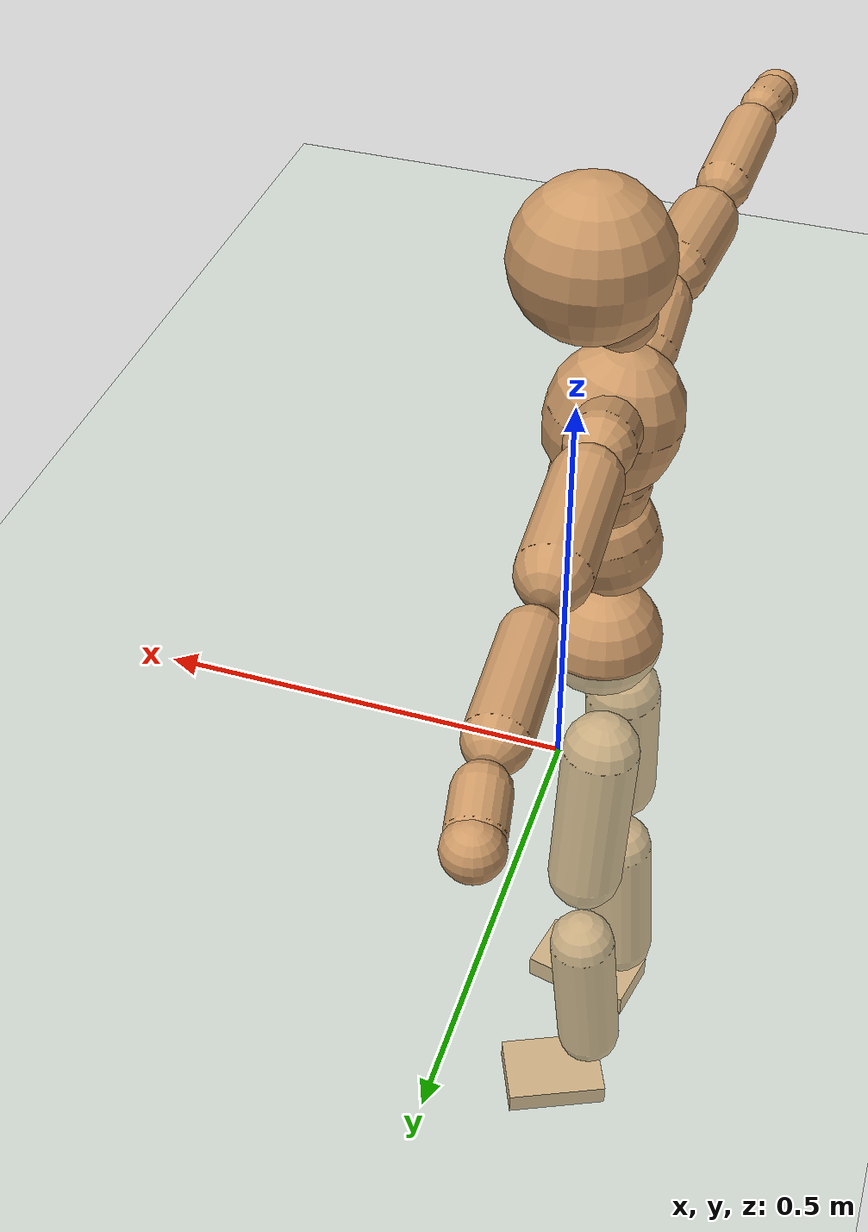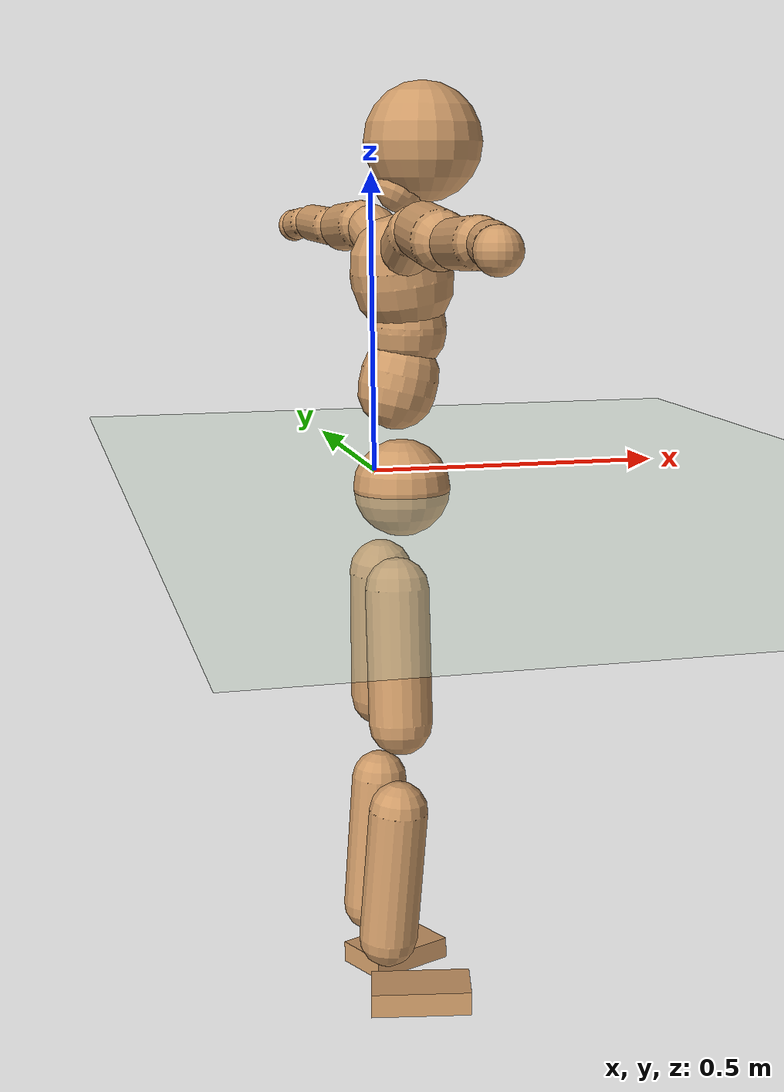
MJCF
<mujoco model="humanoid">
  <compiler coordinate="local" angle="radian"/>
  <default>
    <joint damping="0.0" armature="0.01" stiffness="0.0" limited="true"/>
    <geom conaffinity="1" condim="3" contype="7" margin="0.001" rgba="0.8 0.6 .4 1"/>
  </default>
  <asset>
    <texture type="skybox" builtin="gradient" rgb1=".4 .5 .6" rgb2="0 0 0" width="100" height="100"/>
    <texture builtin="flat" height="1278" mark="cross" markrgb="1 1 1" name="texgeom" random="0.01" rgb1="0.8 0.6 0.4" rgb2="0.8 0.6 0.4" type="cube" width="127"/>
    <texture builtin="checker" height="100" name="texplane" rgb1="0 0 0" rgb2="0.8 0.8 0.8" type="2d" width="100"/>
    <material name="MatPlane" reflectance="0.5" shininess="1" specular="1" texrepeat="60 60" texture="texplane"/>
    <material name="geom" texture="texgeom" texuniform="true"/>
  </asset>
  <worldbody>
    <light cutoff="100" diffuse="1 1 1" dir="-0 0 -1.3" directional="true" exponent="1" pos="0 0 1.3" specular=".1 .1 .1"/>
    <geom conaffinity="1" condim="3" name="floor" pos="0 0 0" rgba="0.8 0.9 0.8 1" size="100 100 .2" type="plane" material="MatPlane"/>
    <body name="Pelvis" pos="0.0016 -0.2038 0.0042">
      <freejoint name="Pelvis"/>
      <geom type="sphere" contype="1" conaffinity="1" density="500" size="0.0780" pos="0.0000 0.0000 0.0000" name="Pelvis"/>
      <body name="L_Hip" pos="-0.0246 0.0494 -0.0736">
        <joint name="L_Hip_x" type="hinge" pos="0 0 0" axis="1 0 0" stiffness="800" damping="80" armature="0.02" range="-180.0000 180.0000"/>
        <joint name="L_Hip_y" type="hinge" pos="0 0 0" axis="0 1 0" stiffness="800" damping="80" armature="0.02" range="-180.0000 180.0000"/>
        <joint name="L_Hip_z" type="hinge" pos="0 0 0" axis="0 0 1" stiffness="800" damping="80" armature="0.02" range="-180.0000 180.0000"/>
        <geom type="capsule" contype="1" conaffinity="1" density="500" fromto="0.0015 0.0089 -0.0736 0.0058 0.0357 -0.2944" size="0.0512" name="L_Hip"/>
        <body name="L_Knee" pos="0.0073 0.0446 -0.3681">
          <joint name="L_Knee_x" type="hinge" pos="0 0 0" axis="1 0 0" stiffness="800" damping="80" armature="0.02" range="-180.0000 180.0000"/>
          <joint name="L_Knee_y" type="hinge" pos="0 0 0" axis="0 1 0" stiffness="800" damping="80" armature="0.02" range="-180.0000 180.0000"/>
          <joint name="L_Knee_z" type="hinge" pos="0 0 0" axis="0 0 1" stiffness="800" damping="80" armature="0.02" range="-180.0000 180.0000"/>
          <geom type="capsule" contype="1" conaffinity="1" density="500" fromto="-0.0061 -0.0020 -0.0746 -0.0244 -0.0081 -0.2984" size="0.0461" name="L_Knee"/>
          <body name="L_Ankle" pos="-0.0305 -0.0101 -0.373">
            <joint name="L_Ankle_x" type="hinge" pos="0 0 0" axis="1 0 0" stiffness="800" damping="80" armature="0.02" range="-180.0000 180.0000"/>
            <joint name="L_Ankle_y" type="hinge" pos="0 0 0" axis="0 1 0" stiffness="800" damping="80" armature="0.02" range="-180.0000 180.0000"/>
            <joint name="L_Ankle_z" type="hinge" pos="0 0 0" axis="0 0 1" stiffness="800" damping="80" armature="0.02" range="-180.0000 180.0000"/>
            <geom type="box" contype="1" conaffinity="1" density="500" pos="0.0530 0.0236 -0.0269" size="0.0734 0.0499 0.0178" quat="0.9782 0.0000 0.0000 0.2078" name="L_Ankle"/>
            <body name="L_Toe" pos="0.106 0.0472 -0.0539">
              <joint name="L_Toe_x" type="hinge" pos="0 0 0" axis="1 0 0" stiffness="500" damping="50" armature="0.02" range="-180.0000 180.0000"/>
              <joint name="L_Toe_y" type="hinge" pos="0 0 0" axis="0 1 0" stiffness="500" damping="50" armature="0.02" range="-180.0000 180.0000"/>
              <joint name="L_Toe_z" type="hinge" pos="0 0 0" axis="0 0 1" stiffness="500" damping="50" armature="0.02" range="-180.0000 180.0000"/>
              <geom type="box" contype="1" conaffinity="1" density="500" pos="0.0000 0.0000 0.0290" size="0.001 0.0023 0.001" quat="0.9773 0.0000 0.0000 0.2120" name="L_Toe"/>
            </body>
          </body>
        </body>
      </body>
      <body name="R_Hip" pos="-0.0219 -0.0517 -0.0813">
        <joint name="R_Hip_x" type="hinge" pos="0 0 0" axis="1 0 0" stiffness="800" damping="80" armature="0.02" range="-180.0000 180.0000"/>
        <joint name="R_Hip_y" type="hinge" pos="0 0 0" axis="0 1 0" stiffness="800" damping="80" armature="0.02" range="-180.0000 180.0000"/>
        <joint name="R_Hip_z" type="hinge" pos="0 0 0" axis="0 0 1" stiffness="800" damping="80" armature="0.02" range="-180.0000 180.0000"/>
        <geom type="capsule" contype="1" conaffinity="1" density="500" fromto="-0.0007 -0.0089 -0.0714 -0.0027 -0.0357 -0.2855" size="0.0508" name="R_Hip"/>
        <body name="R_Knee" pos="-0.0034 -0.0446 -0.3569">
          <joint name="R_Knee_x" type="hinge" pos="0 0 0" axis="1 0 0" stiffness="800" damping="80" armature="0.02" range="-180.0000 180.0000"/>
          <joint name="R_Knee_y" type="hinge" pos="0 0 0" axis="0 1 0" stiffness="800" damping="80" armature="0.02" range="-180.0000 180.0000"/>
          <joint name="R_Knee_z" type="hinge" pos="0 0 0" axis="0 0 1" stiffness="800" damping="80" armature="0.02" range="-180.0000 180.0000"/>
          <geom type="capsule" contype="1" conaffinity="1" density="500" fromto="-0.0057 0.0030 -0.0730 -0.0228 0.0119 -0.2921" size="0.0475" name="R_Knee"/>
          <body name="R_Ankle" pos="-0.0285 0.0149 -0.3651">
            <joint name="R_Ankle_x" type="hinge" pos="0 0 0" axis="1 0 0" stiffness="800" damping="80" armature="0.02" range="-180.0000 180.0000"/>
            <joint name="R_Ankle_y" type="hinge" pos="0 0 0" axis="0 1 0" stiffness="800" damping="80" armature="0.02" range="-180.0000 180.0000"/>
            <joint name="R_Ankle_z" type="hinge" pos="0 0 0" axis="0 0 1" stiffness="800" damping="80" armature="0.02" range="-180.0000 180.0000"/>
            <geom type="box" contype="1" conaffinity="1" density="500" pos="0.0576 -0.0119 -0.0285" size="0.0816 0.0458 0.0194" quat="0.9948 0.0000 0.0000 -0.1014" name="R_Ankle"/>
            <body name="R_Toe" pos="0.1151 -0.0237 -0.057">
              <joint name="R_Toe_x" type="hinge" pos="0 0 0" axis="1 0 0" stiffness="500" damping="50" armature="0.02" range="-180.0000 180.0000"/>
              <joint name="R_Toe_y" type="hinge" pos="0 0 0" axis="0 1 0" stiffness="500" damping="50" armature="0.02" range="-180.0000 180.0000"/>
              <joint name="R_Toe_z" type="hinge" pos="0 0 0" axis="0 0 1" stiffness="500" damping="50" armature="0.02" range="-180.0000 180.0000"/>
              <geom type="box" contype="1" conaffinity="1" density="500" pos="0.0000 0.0000 0.0311" size="0.0009 0.0022 0.0011" quat="0.9958 0.0000 0.0000 -0.0915" name="R_Toe"/>
            </body>
          </body>
        </body>
      </body>
      <body name="Torso" pos="-0.0177 0.0037 0.107">
        <joint name="Torso_x" type="hinge" pos="0 0 0" axis="1 0 0" stiffness="1000" damping="100" armature="0.02" range="-180.0000 180.0000"/>
        <joint name="Torso_y" type="hinge" pos="0 0 0" axis="0 1 0" stiffness="1000" damping="100" armature="0.02" range="-180.0000 180.0000"/>
        <joint name="Torso_z" type="hinge" pos="0 0 0" axis="0 0 1" stiffness="1000" damping="100" armature="0.02" range="-180.0000 180.0000"/>
        <geom type="capsule" contype="1" conaffinity="1" density="500" fromto="0.0184 0.0020 0.0732 0.0122 0.0013 0.0488" size="0.0626" name="Torso"/>
        <body name="Spine" pos="0.0306 0.0033 0.122">
          <joint name="Spine_x" type="hinge" pos="0 0 0" axis="1 0 0" stiffness="1000" damping="100" armature="0.02" range="-180.0000 180.0000"/>
          <joint name="Spine_y" type="hinge" pos="0 0 0" axis="0 1 0" stiffness="1000" damping="100" armature="0.02" range="-180.0000 180.0000"/>
          <joint name="Spine_z" type="hinge" pos="0 0 0" axis="0 0 1" stiffness="1000" damping="100" armature="0.02" range="-180.0000 180.0000"/>
          <geom type="capsule" contype="1" conaffinity="1" density="500" fromto="0.0003 -0.0014 0.0290 0.0002 -0.0010 0.0193" size="0.0619" name="Spine"/>
          <body name="Chest" pos="0.0006 -0.0024 0.0483">
            <joint name="Chest_x" type="hinge" pos="0 0 0" axis="1 0 0" stiffness="1000" damping="100" armature="0.02" range="-180.0000 180.0000"/>
            <joint name="Chest_y" type="hinge" pos="0 0 0" axis="0 1 0" stiffness="1000" damping="100" armature="0.02" range="-180.0000 180.0000"/>
            <joint name="Chest_z" type="hinge" pos="0 0 0" axis="0 0 1" stiffness="1000" damping="100" armature="0.02" range="-180.0000 180.0000"/>
            <geom type="capsule" contype="1" conaffinity="1" density="500" fromto="-0.0120 -0.0051 0.0734 -0.0080 -0.0034 0.0489" size="0.0811" name="Chest"/>
            <body name="Neck" pos="-0.0214 -0.0121 0.1761">
              <joint name="Neck_x" type="hinge" pos="0 0 0" axis="1 0 0" stiffness="500" damping="50" armature="0.02" range="-180.0000 180.0000"/>
              <joint name="Neck_y" type="hinge" pos="0 0 0" axis="0 1 0" stiffness="500" damping="50" armature="0.02" range="-180.0000 180.0000"/>
              <joint name="Neck_z" type="hinge" pos="0 0 0" axis="0 0 1" stiffness="500" damping="50" armature="0.02" range="-180.0000 180.0000"/>
              <geom type="capsule" contype="1" conaffinity="1" density="500" fromto="0.0094 0.0016 0.0175 0.0375 0.0066 0.0701" size="0.0386" name="Neck"/>
              <body name="Head" pos="0.0468 0.0082 0.0877">
                <joint name="Head_x" type="hinge" pos="0 0 0" axis="1 0 0" stiffness="500" damping="50" armature="0.02" range="-180.0000 180.0000"/>
                <joint name="Head_y" type="hinge" pos="0 0 0" axis="0 1 0" stiffness="500" damping="50" armature="0.02" range="-180.0000 180.0000"/>
                <joint name="Head_z" type="hinge" pos="0 0 0" axis="0 0 1" stiffness="500" damping="50" armature="0.02" range="-180.0000 180.0000"/>
                <geom type="sphere" contype="1" conaffinity="1" density="500" size="0.0932" pos="0.0000 0.0000 0.0000" name="Head"/>
              </body>
            </body>
            <body name="L_Thorax" pos="-0.0188 0.0566 0.0948">
              <joint name="L_Thorax_x" type="hinge" pos="0 0 0" axis="1 0 0" stiffness="500" damping="50" armature="0.02" range="-180.0000 180.0000"/>
              <joint name="L_Thorax_y" type="hinge" pos="0 0 0" axis="0 1 0" stiffness="500" damping="50" armature="0.02" range="-180.0000 180.0000"/>
              <joint name="L_Thorax_z" type="hinge" pos="0 0 0" axis="0 0 1" stiffness="500" damping="50" armature="0.02" range="-180.0000 180.0000"/>
              <geom type="capsule" contype="1" conaffinity="1" density="500" fromto="-0.0020 0.0198 0.0079 -0.0079 0.0792 0.0317" size="0.0402" name="L_Thorax"/>
              <body name="L_Shoulder" pos="-0.0099 0.099 0.0396">
                <joint name="L_Shoulder_x" type="hinge" pos="0 0 0" axis="1 0 0" stiffness="500" damping="50" armature="0.02" range="-720.0000 720.0000"/>
                <joint name="L_Shoulder_y" type="hinge" pos="0 0 0" axis="0 1 0" stiffness="500" damping="50" armature="0.02" range="-720.0000 720.0000"/>
                <joint name="L_Shoulder_z" type="hinge" pos="0 0 0" axis="0 0 1" stiffness="500" damping="50" armature="0.02" range="-720.0000 720.0000"/>
                <geom type="capsule" contype="1" conaffinity="1" density="500" fromto="-0.0017 0.0465 -0.0024 -0.0069 0.1862 -0.0096" size="0.0406" name="L_Shoulder"/>
                <body name="L_Elbow" pos="-0.0086 0.2327 -0.012">
                  <joint name="L_Elbow_x" type="hinge" pos="0 0 0" axis="1 0 0" stiffness="500" damping="50" armature="0.02" range="-720.0000 720.0000"/>
                  <joint name="L_Elbow_y" type="hinge" pos="0 0 0" axis="0 1 0" stiffness="500" damping="50" armature="0.02" range="-720.0000 720.0000"/>
                  <joint name="L_Elbow_z" type="hinge" pos="0 0 0" axis="0 0 1" stiffness="500" damping="50" armature="0.02" range="-720.0000 720.0000"/>
                  <geom type="capsule" contype="1" conaffinity="1" density="500" fromto="-0.0028 0.0456 0.0011 -0.0111 0.1825 0.0046" size="0.0329" name="L_Elbow"/>
                  <body name="L_Wrist" pos="-0.0138 0.2281 0.0057">
                    <joint name="L_Wrist_x" type="hinge" pos="0 0 0" axis="1 0 0" stiffness="300" damping="30" armature="0.02" range="-180.0000 180.0000"/>
                    <joint name="L_Wrist_y" type="hinge" pos="0 0 0" axis="0 1 0" stiffness="300" damping="30" armature="0.02" range="-180.0000 180.0000"/>
                    <joint name="L_Wrist_z" type="hinge" pos="0 0 0" axis="0 0 1" stiffness="300" damping="30" armature="0.02" range="-180.0000 180.0000"/>
                    <geom type="capsule" contype="1" conaffinity="1" density="500" fromto="-0.0026 0.0144 -0.0017 -0.0106 0.0578 -0.0069" size="0.0281" name="L_Wrist"/>
                    <body name="L_Hand" pos="-0.0132 0.0722 -0.0086">
                      <joint name="L_Hand_x" type="hinge" pos="0 0 0" axis="1 0 0" stiffness="300" damping="30" armature="0.02" range="-180.0000 180.0000"/>
                      <joint name="L_Hand_y" type="hinge" pos="0 0 0" axis="0 1 0" stiffness="300" damping="30" armature="0.02" range="-180.0000 180.0000"/>
                      <joint name="L_Hand_z" type="hinge" pos="0 0 0" axis="0 0 1" stiffness="300" damping="30" armature="0.02" range="-180.0000 180.0000"/>
                      <geom type="sphere" contype="1" conaffinity="1" density="500" size="0.0296" pos="0.0000 0.0000 0.0000" name="L_Hand"/>
                    </body>
                  </body>
                </body>
              </body>
            </body>
            <body name="R_Thorax" pos="-0.0198 -0.0702 0.0962">
              <joint name="R_Thorax_x" type="hinge" pos="0 0 0" axis="1 0 0" stiffness="500" damping="50" armature="0.02" range="-180.0000 180.0000"/>
              <joint name="R_Thorax_y" type="hinge" pos="0 0 0" axis="0 1 0" stiffness="500" damping="50" armature="0.02" range="-180.0000 180.0000"/>
              <joint name="R_Thorax_z" type="hinge" pos="0 0 0" axis="0 0 1" stiffness="500" damping="50" armature="0.02" range="-180.0000 180.0000"/>
              <geom type="capsule" contype="1" conaffinity="1" density="500" fromto="-0.0003 -0.0187 0.0081 -0.0014 -0.0750 0.0324" size="0.0418" name="R_Thorax"/>
              <body name="R_Shoulder" pos="-0.0017 -0.0937 0.0405">
                <joint name="R_Shoulder_x" type="hinge" pos="0 0 0" axis="1 0 0" stiffness="500" damping="50" armature="0.02" range="-720.0000 720.0000"/>
                <joint name="R_Shoulder_y" type="hinge" pos="0 0 0" axis="0 1 0" stiffness="500" damping="50" armature="0.02" range="-720.0000 720.0000"/>
                <joint name="R_Shoulder_z" type="hinge" pos="0 0 0" axis="0 0 1" stiffness="500" damping="50" armature="0.02" range="-720.0000 720.0000"/>
                <geom type="capsule" contype="1" conaffinity="1" density="500" fromto="-0.0028 -0.0468 -0.0031 -0.0112 -0.1870 -0.0123" size="0.0431" name="R_Shoulder"/>
                <body name="R_Elbow" pos="-0.014 -0.2338 -0.0154">
                  <joint name="R_Elbow_x" type="hinge" pos="0 0 0" axis="1 0 0" stiffness="500" damping="50" armature="0.02" range="-720.0000 720.0000"/>
                  <joint name="R_Elbow_y" type="hinge" pos="0 0 0" axis="0 1 0" stiffness="500" damping="50" armature="0.02" range="-720.0000 720.0000"/>
                  <joint name="R_Elbow_z" type="hinge" pos="0 0 0" axis="0 0 1" stiffness="500" damping="50" armature="0.02" range="-720.0000 720.0000"/>
                  <geom type="capsule" contype="1" conaffinity="1" density="500" fromto="-0.0018 -0.0484 0.0021 -0.0071 -0.1936 0.0085" size="0.0348" name="R_Elbow"/>
                  <body name="R_Wrist" pos="-0.0088 -0.2419 0.0106">
                    <joint name="R_Wrist_x" type="hinge" pos="0 0 0" axis="1 0 0" stiffness="300" damping="30" armature="0.02" range="-180.0000 180.0000"/>
                    <joint name="R_Wrist_y" type="hinge" pos="0 0 0" axis="0 1 0" stiffness="300" damping="30" armature="0.02" range="-180.0000 180.0000"/>
                    <joint name="R_Wrist_z" type="hinge" pos="0 0 0" axis="0 0 1" stiffness="300" damping="30" armature="0.02" range="-180.0000 180.0000"/>
                    <geom type="capsule" contype="1" conaffinity="1" density="500" fromto="-0.0018 -0.0153 -0.0014 -0.0071 -0.0613 -0.0056" size="0.0298" name="R_Wrist"/>
                    <body name="R_Hand" pos="-0.0088 -0.0766 -0.007">
                      <joint name="R_Hand_x" type="hinge" pos="0 0 0" axis="1 0 0" stiffness="300" damping="30" armature="0.02" range="-180.0000 180.0000"/>
                      <joint name="R_Hand_y" type="hinge" pos="0 0 0" axis="0 1 0" stiffness="300" damping="30" armature="0.02" range="-180.0000 180.0000"/>
                      <joint name="R_Hand_z" type="hinge" pos="0 0 0" axis="0 0 1" stiffness="300" damping="30" armature="0.02" range="-180.0000 180.0000"/>
                      <geom type="sphere" contype="1" conaffinity="1" density="500" size="0.0311" pos="0.0000 0.0000 0.0000" name="R_Hand"/>
                    </body>
                  </body>
                </body>
              </body>
            </body>
          </body>
        </body>
      </body>
    </body>
  </worldbody>
  <actuator>
    <motor name="L_Hip_x" joint="L_Hip_x" gear="500"/>
    <motor name="L_Hip_y" joint="L_Hip_y" gear="500"/>
    <motor name="L_Hip_z" joint="L_Hip_z" gear="500"/>
    <motor name="L_Knee_x" joint="L_Knee_x" gear="500"/>
    <motor name="L_Knee_y" joint="L_Knee_y" gear="500"/>
    <motor name="L_Knee_z" joint="L_Knee_z" gear="500"/>
    <motor name="L_Ankle_x" joint="L_Ankle_x" gear="500"/>
    <motor name="L_Ankle_y" joint="L_Ankle_y" gear="500"/>
    <motor name="L_Ankle_z" joint="L_Ankle_z" gear="500"/>
    <motor name="L_Toe_x" joint="L_Toe_x" gear="500"/>
    <motor name="L_Toe_y" joint="L_Toe_y" gear="500"/>
    <motor name="L_Toe_z" joint="L_Toe_z" gear="500"/>
    <motor name="R_Hip_x" joint="R_Hip_x" gear="500"/>
    <motor name="R_Hip_y" joint="R_Hip_y" gear="500"/>
    <motor name="R_Hip_z" joint="R_Hip_z" gear="500"/>
    <motor name="R_Knee_x" joint="R_Knee_x" gear="500"/>
    <motor name="R_Knee_y" joint="R_Knee_y" gear="500"/>
    <motor name="R_Knee_z" joint="R_Knee_z" gear="500"/>
    <motor name="R_Ankle_x" joint="R_Ankle_x" gear="500"/>
    <motor name="R_Ankle_y" joint="R_Ankle_y" gear="500"/>
    <motor name="R_Ankle_z" joint="R_Ankle_z" gear="500"/>
    <motor name="R_Toe_x" joint="R_Toe_x" gear="500"/>
    <motor name="R_Toe_y" joint="R_Toe_y" gear="500"/>
    <motor name="R_Toe_z" joint="R_Toe_z" gear="500"/>
    <motor name="Torso_x" joint="Torso_x" gear="500"/>
    <motor name="Torso_y" joint="Torso_y" gear="500"/>
    <motor name="Torso_z" joint="Torso_z" gear="500"/>
    <motor name="Spine_x" joint="Spine_x" gear="500"/>
    <motor name="Spine_y" joint="Spine_y" gear="500"/>
    <motor name="Spine_z" joint="Spine_z" gear="500"/>
    <motor name="Chest_x" joint="Chest_x" gear="500"/>
    <motor name="Chest_y" joint="Chest_y" gear="500"/>
    <motor name="Chest_z" joint="Chest_z" gear="500"/>
    <motor name="Neck_x" joint="Neck_x" gear="500"/>
    <motor name="Neck_y" joint="Neck_y" gear="500"/>
    <motor name="Neck_z" joint="Neck_z" gear="500"/>
    <motor name="Head_x" joint="Head_x" gear="500"/>
    <motor name="Head_y" joint="Head_y" gear="500"/>
    <motor name="Head_z" joint="Head_z" gear="500"/>
    <motor name="L_Thorax_x" joint="L_Thorax_x" gear="500"/>
    <motor name="L_Thorax_y" joint="L_Thorax_y" gear="500"/>
    <motor name="L_Thorax_z" joint="L_Thorax_z" gear="500"/>
    <motor name="L_Shoulder_x" joint="L_Shoulder_x" gear="500"/>
    <motor name="L_Shoulder_y" joint="L_Shoulder_y" gear="500"/>
    <motor name="L_Shoulder_z" joint="L_Shoulder_z" gear="500"/>
    <motor name="L_Elbow_x" joint="L_Elbow_x" gear="500"/>
    <motor name="L_Elbow_y" joint="L_Elbow_y" gear="500"/>
    <motor name="L_Elbow_z" joint="L_Elbow_z" gear="500"/>
    <motor name="L_Wrist_x" joint="L_Wrist_x" gear="500"/>
    <motor name="L_Wrist_y" joint="L_Wrist_y" gear="500"/>
    <motor name="L_Wrist_z" joint="L_Wrist_z" gear="500"/>
    <motor name="L_Hand_x" joint="L_Hand_x" gear="500"/>
    <motor name="L_Hand_y" joint="L_Hand_y" gear="500"/>
    <motor name="L_Hand_z" joint="L_Hand_z" gear="500"/>
    <motor name="R_Thorax_x" joint="R_Thorax_x" gear="500"/>
    <motor name="R_Thorax_y" joint="R_Thorax_y" gear="500"/>
    <motor name="R_Thorax_z" joint="R_Thorax_z" gear="500"/>
    <motor name="R_Shoulder_x" joint="R_Shoulder_x" gear="500"/>
    <motor name="R_Shoulder_y" joint="R_Shoulder_y" gear="500"/>
    <motor name="R_Shoulder_z" joint="R_Shoulder_z" gear="500"/>
    <motor name="R_Elbow_x" joint="R_Elbow_x" gear="500"/>
    <motor name="R_Elbow_y" joint="R_Elbow_y" gear="500"/>
    <motor name="R_Elbow_z" joint="R_Elbow_z" gear="500"/>
    <motor name="R_Wrist_x" joint="R_Wrist_x" gear="500"/>
    <motor name="R_Wrist_y" joint="R_Wrist_y" gear="500"/>
    <motor name="R_Wrist_z" joint="R_Wrist_z" gear="500"/>
    <motor name="R_Hand_x" joint="R_Hand_x" gear="500"/>
    <motor name="R_Hand_y" joint="R_Hand_y" gear="500"/>
    <motor name="R_Hand_z" joint="R_Hand_z" gear="500"/>
  </actuator>
  <contact>
    <exclude body1="Torso" body2="Chest"/>
    <exclude body1="Head" body2="Chest"/>
    <exclude body1="R_Knee" body2="R_Toe"/>
    <exclude body1="R_Knee" body2="L_Ankle"/>
    <exclude body1="R_Knee" body2="L_Toe"/>
    <exclude body1="L_Knee" body2="L_Toe"/>
    <exclude body1="L_Knee" body2="R_Ankle"/>
    <exclude body1="L_Knee" body2="R_Toe"/>
    <exclude body1="L_Shoulder" body2="Chest"/>
    <exclude body1="R_Shoulder" body2="Chest"/>
  </contact>
  <sensor/>
  <size njmax="700" nconmax="700"/>
</mujoco>
